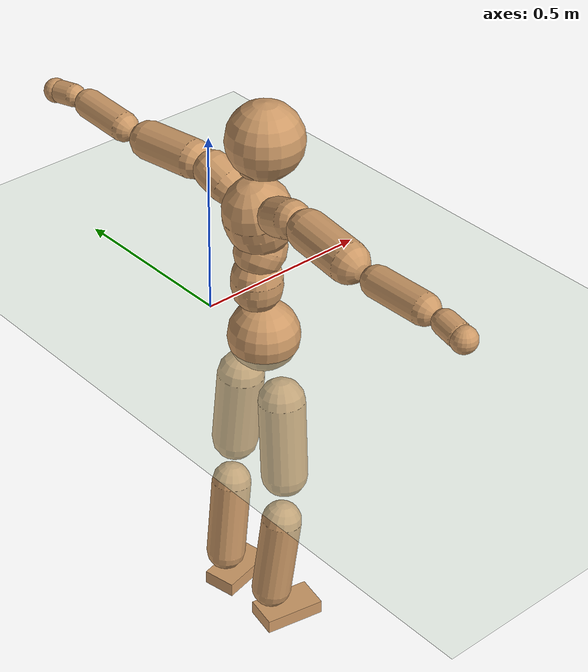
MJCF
<mujoco model="humanoid">
  <compiler coordinate="local"/>
  <default>
    <joint damping="0.0" armature="0.01" stiffness="0.0" limited="true"/>
    <geom conaffinity="1" condim="3" contype="7" margin="0.001" rgba="0.8 0.6 .4 1"/>
  </default>
  <asset>
    <texture type="skybox" builtin="gradient" rgb1=".4 .5 .6" rgb2="0 0 0" width="100" height="100"/>
    <texture builtin="flat" height="1278" mark="cross" markrgb="1 1 1" name="texgeom" random="0.01" rgb1="0.8 0.6 0.4" rgb2="0.8 0.6 0.4" type="cube" width="127"/>
    <texture builtin="checker" height="100" name="texplane" rgb1="0 0 0" rgb2="0.8 0.8 0.8" type="2d" width="100"/>
    <material name="MatPlane" reflectance="0.5" shininess="1" specular="1" texrepeat="60 60" texture="texplane"/>
    <material name="geom" texture="texgeom" texuniform="true"/>
  </asset>
  <worldbody>
    <light cutoff="100" diffuse="1 1 1" dir="-0 0 -1.3" directional="true" exponent="1" pos="0 0 1.3" specular=".1 .1 .1"/>
    <geom conaffinity="1" condim="3" name="floor" pos="0 0 0" rgba="0.8 0.9 0.8 1" size="100 100 .2" type="plane" material="MatPlane"/>
    <body name="Pelvis" pos="-0.0009 -0.2134 0.0295">
      <freejoint name="Pelvis"/>
      <geom type="sphere" contype="1" conaffinity="1" density="500" size="0.0945" pos="0.0000 0.0000 0.0000" name="Pelvis"/>
      <body name="L_Hip" pos="-0.0072 0.0729 -0.0905">
        <joint name="L_Hip_x" type="hinge" pos="0 0 0" axis="1 0 0" stiffness="800" damping="80" armature="0.02" range="-180.0000 180.0000"/>
        <joint name="L_Hip_y" type="hinge" pos="0 0 0" axis="0 1 0" stiffness="800" damping="80" armature="0.02" range="-180.0000 180.0000"/>
        <joint name="L_Hip_z" type="hinge" pos="0 0 0" axis="0 0 1" stiffness="800" damping="80" armature="0.02" range="-180.0000 180.0000"/>
        <geom type="capsule" contype="1" conaffinity="1" density="500" fromto="-0.0014 0.0061 -0.0732 -0.0057 0.0245 -0.2928" size="0.0627" name="L_Hip"/>
        <body name="L_Knee" pos="-0.0072 0.0306 -0.3659">
          <joint name="L_Knee_x" type="hinge" pos="0 0 0" axis="1 0 0" stiffness="800" damping="80" armature="0.02" range="-180.0000 180.0000"/>
          <joint name="L_Knee_y" type="hinge" pos="0 0 0" axis="0 1 0" stiffness="800" damping="80" armature="0.02" range="-180.0000 180.0000"/>
          <joint name="L_Knee_z" type="hinge" pos="0 0 0" axis="0 0 1" stiffness="800" damping="80" armature="0.02" range="-180.0000 180.0000"/>
          <geom type="capsule" contype="1" conaffinity="1" density="500" fromto="-0.0089 -0.0023 -0.0771 -0.0357 -0.0092 -0.3084" size="0.0538" name="L_Knee"/>
          <body name="L_Ankle" pos="-0.0446 -0.0115 -0.3855">
            <joint name="L_Ankle_x" type="hinge" pos="0 0 0" axis="1 0 0" stiffness="800" damping="80" armature="0.02" range="-180.0000 180.0000"/>
            <joint name="L_Ankle_y" type="hinge" pos="0 0 0" axis="0 1 0" stiffness="800" damping="80" armature="0.02" range="-180.0000 180.0000"/>
            <joint name="L_Ankle_z" type="hinge" pos="0 0 0" axis="0 0 1" stiffness="800" damping="80" armature="0.02" range="-180.0000 180.0000"/>
            <geom type="box" contype="1" conaffinity="1" density="500" pos="0.0576 0.0120 -0.0275" size="0.0826 0.046 0.0203" quat="0.9947 0.0000 0.0000 0.1028" name="L_Ankle"/>
            <body name="L_Toe" pos="0.1151 0.0241 -0.055">
              <joint name="L_Toe_x" type="hinge" pos="0 0 0" axis="1 0 0" stiffness="500" damping="50" armature="0.02" range="-180.0000 180.0000"/>
              <joint name="L_Toe_y" type="hinge" pos="0 0 0" axis="0 1 0" stiffness="500" damping="50" armature="0.02" range="-180.0000 180.0000"/>
              <joint name="L_Toe_z" type="hinge" pos="0 0 0" axis="0 0 1" stiffness="500" damping="50" armature="0.02" range="-180.0000 180.0000"/>
              <geom type="box" contype="1" conaffinity="1" density="500" pos="0.0000 0.0000 0.0269" size="0.001 0.0023 0.001" quat="0.9940 0.0000 0.0000 0.1092" name="L_Toe"/>
            </body>
          </body>
        </body>
      </body>
      <body name="R_Hip" pos="-0.0041 -0.0705 -0.0899">
        <joint name="R_Hip_x" type="hinge" pos="0 0 0" axis="1 0 0" stiffness="800" damping="80" armature="0.02" range="-180.0000 180.0000"/>
        <joint name="R_Hip_y" type="hinge" pos="0 0 0" axis="0 1 0" stiffness="800" damping="80" armature="0.02" range="-180.0000 180.0000"/>
        <joint name="R_Hip_z" type="hinge" pos="0 0 0" axis="0 0 1" stiffness="800" damping="80" armature="0.02" range="-180.0000 180.0000"/>
        <geom type="capsule" contype="1" conaffinity="1" density="500" fromto="-0.0019 -0.0072 -0.0745 -0.0077 -0.0290 -0.2979" size="0.062" name="R_Hip"/>
        <body name="R_Knee" pos="-0.0097 -0.0362 -0.3723">
          <joint name="R_Knee_x" type="hinge" pos="0 0 0" axis="1 0 0" stiffness="800" damping="80" armature="0.02" range="-180.0000 180.0000"/>
          <joint name="R_Knee_y" type="hinge" pos="0 0 0" axis="0 1 0" stiffness="800" damping="80" armature="0.02" range="-180.0000 180.0000"/>
          <joint name="R_Knee_z" type="hinge" pos="0 0 0" axis="0 0 1" stiffness="800" damping="80" armature="0.02" range="-180.0000 180.0000"/>
          <geom type="capsule" contype="1" conaffinity="1" density="500" fromto="-0.0086 0.0028 -0.0772 -0.0345 0.0110 -0.3087" size="0.054" name="R_Knee"/>
          <body name="R_Ankle" pos="-0.0431 0.0138 -0.3858">
            <joint name="R_Ankle_x" type="hinge" pos="0 0 0" axis="1 0 0" stiffness="800" damping="80" armature="0.02" range="-180.0000 180.0000"/>
            <joint name="R_Ankle_y" type="hinge" pos="0 0 0" axis="0 1 0" stiffness="800" damping="80" armature="0.02" range="-180.0000 180.0000"/>
            <joint name="R_Ankle_z" type="hinge" pos="0 0 0" axis="0 0 1" stiffness="800" damping="80" armature="0.02" range="-180.0000 180.0000"/>
            <geom type="box" contype="1" conaffinity="1" density="500" pos="0.0593 -0.0115 -0.0234" size="0.0836 0.0462 0.02" quat="0.9954 0.0000 0.0000 -0.0953" name="R_Ankle"/>
            <body name="R_Toe" pos="0.1187 -0.0229 -0.0469">
              <joint name="R_Toe_x" type="hinge" pos="0 0 0" axis="1 0 0" stiffness="500" damping="50" armature="0.02" range="-180.0000 180.0000"/>
              <joint name="R_Toe_y" type="hinge" pos="0 0 0" axis="0 1 0" stiffness="500" damping="50" armature="0.02" range="-180.0000 180.0000"/>
              <joint name="R_Toe_z" type="hinge" pos="0 0 0" axis="0 0 1" stiffness="500" damping="50" armature="0.02" range="-180.0000 180.0000"/>
              <geom type="box" contype="1" conaffinity="1" density="500" pos="0.0000 0.0000 0.0253" size="0.0009 0.0023 0.0011" quat="0.9963 0.0000 0.0000 -0.0858" name="R_Toe"/>
            </body>
          </body>
        </body>
      </body>
      <body name="Torso" pos="-0.0236 -0.0025 0.1046">
        <joint name="Torso_x" type="hinge" pos="0 0 0" axis="1 0 0" stiffness="1000" damping="100" armature="0.02" range="-180.0000 180.0000"/>
        <joint name="Torso_y" type="hinge" pos="0 0 0" axis="0 1 0" stiffness="1000" damping="100" armature="0.02" range="-180.0000 180.0000"/>
        <joint name="Torso_z" type="hinge" pos="0 0 0" axis="0 0 1" stiffness="1000" damping="100" armature="0.02" range="-180.0000 180.0000"/>
        <geom type="capsule" contype="1" conaffinity="1" density="500" fromto="-0.0016 0.0021 0.0771 -0.0011 0.0014 0.0514" size="0.066123" name="Torso"/>
        <body name="Spine" pos="-0.0026 0.0036 0.1285">
          <joint name="Spine_x" type="hinge" pos="0 0 0" axis="1 0 0" stiffness="1000" damping="100" armature="0.02" range="-180.0000 180.0000"/>
          <joint name="Spine_y" type="hinge" pos="0 0 0" axis="0 1 0" stiffness="1000" damping="100" armature="0.02" range="-180.0000 180.0000"/>
          <joint name="Spine_z" type="hinge" pos="0 0 0" axis="0 0 1" stiffness="1000" damping="100" armature="0.02" range="-180.0000 180.0000"/>
          <geom type="capsule" contype="1" conaffinity="1" density="500" fromto="0.0172 0.0011 0.0296 0.0115 0.0008 0.0197" size="0.066402" name="Spine"/>
          <body name="Chest" pos="0.0286 0.0019 0.0493">
            <joint name="Chest_x" type="hinge" pos="0 0 0" axis="1 0 0" stiffness="1000" damping="100" armature="0.02" range="-180.0000 180.0000"/>
            <joint name="Chest_y" type="hinge" pos="0 0 0" axis="0 1 0" stiffness="1000" damping="100" armature="0.02" range="-180.0000 180.0000"/>
            <joint name="Chest_z" type="hinge" pos="0 0 0" axis="0 0 1" stiffness="1000" damping="100" armature="0.02" range="-180.0000 180.0000"/>
            <geom type="capsule" contype="1" conaffinity="1" density="500" fromto="-0.0260 -0.0008 0.0891 -0.0173 -0.0005 0.0594" size="0.088257" name="Chest"/>
            <body name="Neck" pos="-0.0507 -0.0021 0.2102">
              <joint name="Neck_x" type="hinge" pos="0 0 0" axis="1 0 0" stiffness="500" damping="50" armature="0.02" range="-180.0000 180.0000"/>
              <joint name="Neck_y" type="hinge" pos="0 0 0" axis="0 1 0" stiffness="500" damping="50" armature="0.02" range="-180.0000 180.0000"/>
              <joint name="Neck_z" type="hinge" pos="0 0 0" axis="0 0 1" stiffness="500" damping="50" armature="0.02" range="-180.0000 180.0000"/>
              <geom type="capsule" contype="1" conaffinity="1" density="500" fromto="0.0099 0.0007 0.0124 0.0398 0.0026 0.0498" size="0.038223" name="Neck"/>
              <body name="Head" pos="0.0497 0.0033 0.0622">
                <joint name="Head_x" type="hinge" pos="0 0 0" axis="1 0 0" stiffness="500" damping="50" armature="0.02" range="-180.0000 180.0000"/>
                <joint name="Head_y" type="hinge" pos="0 0 0" axis="0 1 0" stiffness="500" damping="50" armature="0.02" range="-180.0000 180.0000"/>
                <joint name="Head_z" type="hinge" pos="0 0 0" axis="0 0 1" stiffness="500" damping="50" armature="0.02" range="-180.0000 180.0000"/>
                <geom type="sphere" contype="1" conaffinity="1" density="500" size="0.0985" pos="0.0000 0.0000 0.0000" name="Head"/>
              </body>
            </body>
            <body name="L_Thorax" pos="-0.0372 0.075 0.1187">
              <joint name="L_Thorax_x" type="hinge" pos="0 0 0" axis="1 0 0" stiffness="500" damping="50" armature="0.02" range="-180.0000 180.0000"/>
              <joint name="L_Thorax_y" type="hinge" pos="0 0 0" axis="0 1 0" stiffness="500" damping="50" armature="0.02" range="-180.0000 180.0000"/>
              <joint name="L_Thorax_z" type="hinge" pos="0 0 0" axis="0 0 1" stiffness="500" damping="50" armature="0.02" range="-180.0000 180.0000"/>
              <geom type="capsule" contype="1" conaffinity="1" density="500" fromto="-0.0015 0.0170 0.0064 -0.0059 0.0680 0.0255" size="0.05" name="L_Thorax"/>
              <body name="L_Shoulder" pos="-0.0073 0.0851 0.0319">
                <joint name="L_Shoulder_x" type="hinge" pos="0 0 0" axis="1 0 0" stiffness="500" damping="50" armature="0.02" range="-720.0000 720.0000"/>
                <joint name="L_Shoulder_y" type="hinge" pos="0 0 0" axis="0 1 0" stiffness="500" damping="50" armature="0.02" range="-720.0000 720.0000"/>
                <joint name="L_Shoulder_z" type="hinge" pos="0 0 0" axis="0 0 1" stiffness="500" damping="50" armature="0.02" range="-720.0000 720.0000"/>
                <geom type="capsule" contype="1" conaffinity="1" density="500" fromto="-0.0056 0.0504 -0.0024 -0.0225 0.2014 -0.0098" size="0.0508" name="L_Shoulder"/>
                <body name="L_Elbow" pos="-0.0281 0.2518 -0.0122">
                  <joint name="L_Elbow_x" type="hinge" pos="0 0 0" axis="1 0 0" stiffness="500" damping="50" armature="0.02" range="-720.0000 720.0000"/>
                  <joint name="L_Elbow_y" type="hinge" pos="0 0 0" axis="0 1 0" stiffness="500" damping="50" armature="0.02" range="-720.0000 720.0000"/>
                  <joint name="L_Elbow_z" type="hinge" pos="0 0 0" axis="0 0 1" stiffness="500" damping="50" armature="0.02" range="-720.0000 720.0000"/>
                  <geom type="capsule" contype="1" conaffinity="1" density="500" fromto="0.0001 0.0480 0.0018 0.0004 0.1920 0.0073" size="0.0392" name="L_Elbow"/>
                  <body name="L_Wrist" pos="0.0004 0.24 0.0091">
                    <joint name="L_Wrist_x" type="hinge" pos="0 0 0" axis="1 0 0" stiffness="300" damping="30" armature="0.02" range="-180.0000 180.0000"/>
                    <joint name="L_Wrist_y" type="hinge" pos="0 0 0" axis="0 1 0" stiffness="300" damping="30" armature="0.02" range="-180.0000 180.0000"/>
                    <joint name="L_Wrist_z" type="hinge" pos="0 0 0" axis="0 0 1" stiffness="300" damping="30" armature="0.02" range="-180.0000 180.0000"/>
                    <geom type="capsule" contype="1" conaffinity="1" density="500" fromto="-0.0027 0.0161 -0.0020 -0.0107 0.0645 -0.0079" size="0.0305" name="L_Wrist"/>
                    <body name="L_Hand" pos="-0.0134 0.0807 -0.0098">
                      <joint name="L_Hand_x" type="hinge" pos="0 0 0" axis="1 0 0" stiffness="300" damping="30" armature="0.02" range="-180.0000 180.0000"/>
                      <joint name="L_Hand_y" type="hinge" pos="0 0 0" axis="0 1 0" stiffness="300" damping="30" armature="0.02" range="-180.0000 180.0000"/>
                      <joint name="L_Hand_z" type="hinge" pos="0 0 0" axis="0 0 1" stiffness="300" damping="30" armature="0.02" range="-180.0000 180.0000"/>
                      <geom type="sphere" contype="1" conaffinity="1" density="500" size="0.0326" pos="0.0000 0.0000 0.0000" name="L_Hand"/>
                    </body>
                  </body>
                </body>
              </body>
            </body>
            <body name="R_Thorax" pos="-0.0422 -0.0767 0.1168">
              <joint name="R_Thorax_x" type="hinge" pos="0 0 0" axis="1 0 0" stiffness="500" damping="50" armature="0.02" range="-180.0000 180.0000"/>
              <joint name="R_Thorax_y" type="hinge" pos="0 0 0" axis="0 1 0" stiffness="500" damping="50" armature="0.02" range="-180.0000 180.0000"/>
              <joint name="R_Thorax_z" type="hinge" pos="0 0 0" axis="0 0 1" stiffness="500" damping="50" armature="0.02" range="-180.0000 180.0000"/>
              <geom type="capsule" contype="1" conaffinity="1" density="500" fromto="-0.0019 -0.0178 0.0065 -0.0074 -0.0711 0.0262" size="0.049" name="R_Thorax"/>
              <body name="R_Shoulder" pos="-0.0093 -0.0888 0.0327">
                <joint name="R_Shoulder_x" type="hinge" pos="0 0 0" axis="1 0 0" stiffness="500" damping="50" armature="0.02" range="-720.0000 720.0000"/>
                <joint name="R_Shoulder_y" type="hinge" pos="0 0 0" axis="0 1 0" stiffness="500" damping="50" armature="0.02" range="-720.0000 720.0000"/>
                <joint name="R_Shoulder_z" type="hinge" pos="0 0 0" axis="0 0 1" stiffness="500" damping="50" armature="0.02" range="-720.0000 720.0000"/>
                <geom type="capsule" contype="1" conaffinity="1" density="500" fromto="-0.0042 -0.0493 -0.0026 -0.0167 -0.1973 -0.0105" size="0.052" name="R_Shoulder"/>
                <body name="R_Elbow" pos="-0.0208 -0.2466 -0.0131">
                  <joint name="R_Elbow_x" type="hinge" pos="0 0 0" axis="1 0 0" stiffness="500" damping="50" armature="0.02" range="-720.0000 720.0000"/>
                  <joint name="R_Elbow_y" type="hinge" pos="0 0 0" axis="0 1 0" stiffness="500" damping="50" armature="0.02" range="-720.0000 720.0000"/>
                  <joint name="R_Elbow_z" type="hinge" pos="0 0 0" axis="0 0 1" stiffness="500" damping="50" armature="0.02" range="-720.0000 720.0000"/>
                  <geom type="capsule" contype="1" conaffinity="1" density="500" fromto="-0.0006 -0.0493 0.0018 -0.0025 -0.1971 0.0071" size="0.0392" name="R_Elbow"/>
                  <body name="R_Wrist" pos="-0.0031 -0.2464 0.0089">
                    <joint name="R_Wrist_x" type="hinge" pos="0 0 0" axis="1 0 0" stiffness="300" damping="30" armature="0.02" range="-180.0000 180.0000"/>
                    <joint name="R_Wrist_y" type="hinge" pos="0 0 0" axis="0 1 0" stiffness="300" damping="30" armature="0.02" range="-180.0000 180.0000"/>
                    <joint name="R_Wrist_z" type="hinge" pos="0 0 0" axis="0 0 1" stiffness="300" damping="30" armature="0.02" range="-180.0000 180.0000"/>
                    <geom type="capsule" contype="1" conaffinity="1" density="500" fromto="-0.0021 -0.0162 -0.0015 -0.0084 -0.0649 -0.0058" size="0.0311" name="R_Wrist"/>
                    <body name="R_Hand" pos="-0.0105 -0.0811 -0.0073">
                      <joint name="R_Hand_x" type="hinge" pos="0 0 0" axis="1 0 0" stiffness="300" damping="30" armature="0.02" range="-180.0000 180.0000"/>
                      <joint name="R_Hand_y" type="hinge" pos="0 0 0" axis="0 1 0" stiffness="300" damping="30" armature="0.02" range="-180.0000 180.0000"/>
                      <joint name="R_Hand_z" type="hinge" pos="0 0 0" axis="0 0 1" stiffness="300" damping="30" armature="0.02" range="-180.0000 180.0000"/>
                      <geom type="sphere" contype="1" conaffinity="1" density="500" size="0.0326" pos="0.0000 0.0000 0.0000" name="R_Hand"/>
                    </body>
                  </body>
                </body>
              </body>
            </body>
          </body>
        </body>
      </body>
    </body>
  </worldbody>
  <actuator>
    <motor name="L_Hip_x" joint="L_Hip_x" gear="500"/>
    <motor name="L_Hip_y" joint="L_Hip_y" gear="500"/>
    <motor name="L_Hip_z" joint="L_Hip_z" gear="500"/>
    <motor name="L_Knee_x" joint="L_Knee_x" gear="500"/>
    <motor name="L_Knee_y" joint="L_Knee_y" gear="500"/>
    <motor name="L_Knee_z" joint="L_Knee_z" gear="500"/>
    <motor name="L_Ankle_x" joint="L_Ankle_x" gear="500"/>
    <motor name="L_Ankle_y" joint="L_Ankle_y" gear="500"/>
    <motor name="L_Ankle_z" joint="L_Ankle_z" gear="500"/>
    <motor name="L_Toe_x" joint="L_Toe_x" gear="500"/>
    <motor name="L_Toe_y" joint="L_Toe_y" gear="500"/>
    <motor name="L_Toe_z" joint="L_Toe_z" gear="500"/>
    <motor name="R_Hip_x" joint="R_Hip_x" gear="500"/>
    <motor name="R_Hip_y" joint="R_Hip_y" gear="500"/>
    <motor name="R_Hip_z" joint="R_Hip_z" gear="500"/>
    <motor name="R_Knee_x" joint="R_Knee_x" gear="500"/>
    <motor name="R_Knee_y" joint="R_Knee_y" gear="500"/>
    <motor name="R_Knee_z" joint="R_Knee_z" gear="500"/>
    <motor name="R_Ankle_x" joint="R_Ankle_x" gear="500"/>
    <motor name="R_Ankle_y" joint="R_Ankle_y" gear="500"/>
    <motor name="R_Ankle_z" joint="R_Ankle_z" gear="500"/>
    <motor name="R_Toe_x" joint="R_Toe_x" gear="500"/>
    <motor name="R_Toe_y" joint="R_Toe_y" gear="500"/>
    <motor name="R_Toe_z" joint="R_Toe_z" gear="500"/>
    <motor name="Torso_x" joint="Torso_x" gear="500"/>
    <motor name="Torso_y" joint="Torso_y" gear="500"/>
    <motor name="Torso_z" joint="Torso_z" gear="500"/>
    <motor name="Spine_x" joint="Spine_x" gear="500"/>
    <motor name="Spine_y" joint="Spine_y" gear="500"/>
    <motor name="Spine_z" joint="Spine_z" gear="500"/>
    <motor name="Chest_x" joint="Chest_x" gear="500"/>
    <motor name="Chest_y" joint="Chest_y" gear="500"/>
    <motor name="Chest_z" joint="Chest_z" gear="500"/>
    <motor name="Neck_x" joint="Neck_x" gear="500"/>
    <motor name="Neck_y" joint="Neck_y" gear="500"/>
    <motor name="Neck_z" joint="Neck_z" gear="500"/>
    <motor name="Head_x" joint="Head_x" gear="500"/>
    <motor name="Head_y" joint="Head_y" gear="500"/>
    <motor name="Head_z" joint="Head_z" gear="500"/>
    <motor name="L_Thorax_x" joint="L_Thorax_x" gear="500"/>
    <motor name="L_Thorax_y" joint="L_Thorax_y" gear="500"/>
    <motor name="L_Thorax_z" joint="L_Thorax_z" gear="500"/>
    <motor name="L_Shoulder_x" joint="L_Shoulder_x" gear="500"/>
    <motor name="L_Shoulder_y" joint="L_Shoulder_y" gear="500"/>
    <motor name="L_Shoulder_z" joint="L_Shoulder_z" gear="500"/>
    <motor name="L_Elbow_x" joint="L_Elbow_x" gear="500"/>
    <motor name="L_Elbow_y" joint="L_Elbow_y" gear="500"/>
    <motor name="L_Elbow_z" joint="L_Elbow_z" gear="500"/>
    <motor name="L_Wrist_x" joint="L_Wrist_x" gear="500"/>
    <motor name="L_Wrist_y" joint="L_Wrist_y" gear="500"/>
    <motor name="L_Wrist_z" joint="L_Wrist_z" gear="500"/>
    <motor name="L_Hand_x" joint="L_Hand_x" gear="500"/>
    <motor name="L_Hand_y" joint="L_Hand_y" gear="500"/>
    <motor name="L_Hand_z" joint="L_Hand_z" gear="500"/>
    <motor name="R_Thorax_x" joint="R_Thorax_x" gear="500"/>
    <motor name="R_Thorax_y" joint="R_Thorax_y" gear="500"/>
    <motor name="R_Thorax_z" joint="R_Thorax_z" gear="500"/>
    <motor name="R_Shoulder_x" joint="R_Shoulder_x" gear="500"/>
    <motor name="R_Shoulder_y" joint="R_Shoulder_y" gear="500"/>
    <motor name="R_Shoulder_z" joint="R_Shoulder_z" gear="500"/>
    <motor name="R_Elbow_x" joint="R_Elbow_x" gear="500"/>
    <motor name="R_Elbow_y" joint="R_Elbow_y" gear="500"/>
    <motor name="R_Elbow_z" joint="R_Elbow_z" gear="500"/>
    <motor name="R_Wrist_x" joint="R_Wrist_x" gear="500"/>
    <motor name="R_Wrist_y" joint="R_Wrist_y" gear="500"/>
    <motor name="R_Wrist_z" joint="R_Wrist_z" gear="500"/>
    <motor name="R_Hand_x" joint="R_Hand_x" gear="500"/>
    <motor name="R_Hand_y" joint="R_Hand_y" gear="500"/>
    <motor name="R_Hand_z" joint="R_Hand_z" gear="500"/>
  </actuator>
  <contact>
    <exclude body1="Torso" body2="Chest"/>
    <exclude body1="Head" body2="Chest"/>
    <exclude body1="R_Knee" body2="R_Toe"/>
    <exclude body1="R_Knee" body2="L_Ankle"/>
    <exclude body1="R_Knee" body2="L_Toe"/>
    <exclude body1="L_Knee" body2="L_Toe"/>
    <exclude body1="L_Knee" body2="R_Ankle"/>
    <exclude body1="L_Knee" body2="R_Toe"/>
    <exclude body1="L_Shoulder" body2="Chest"/>
    <exclude body1="R_Shoulder" body2="Chest"/>
  </contact>
  <sensor/>
  <size njmax="700" nconmax="700"/>
</mujoco>
